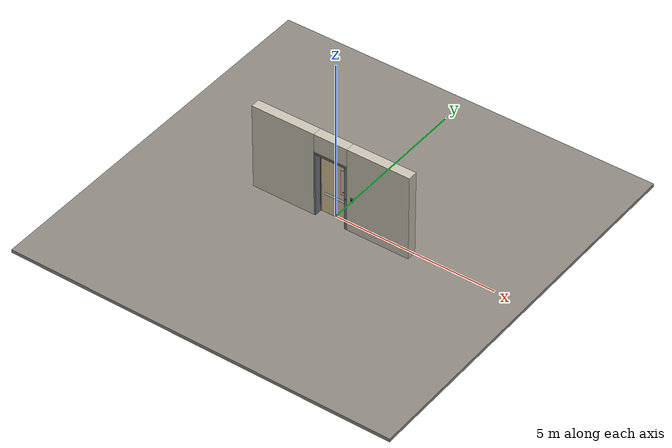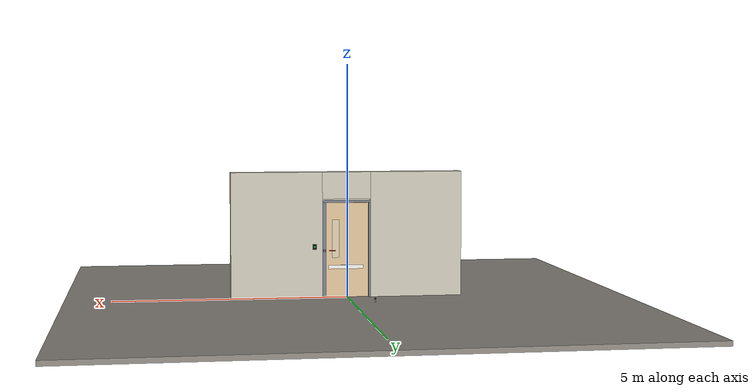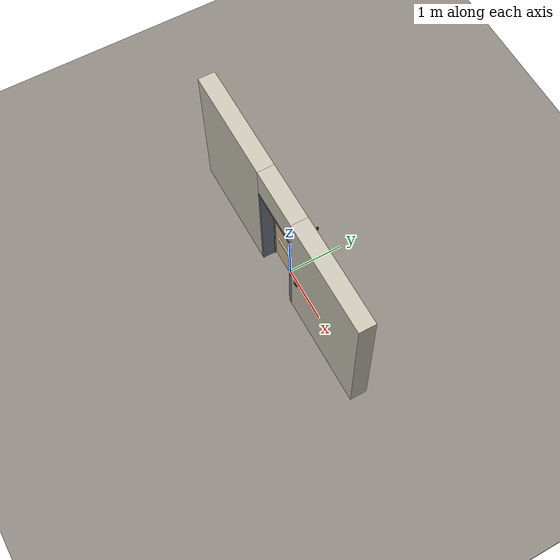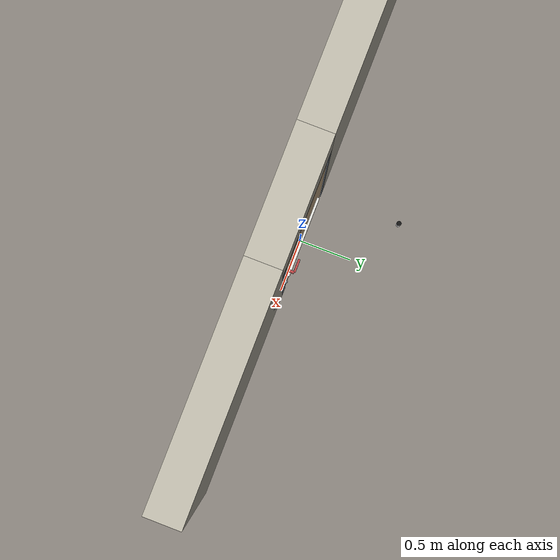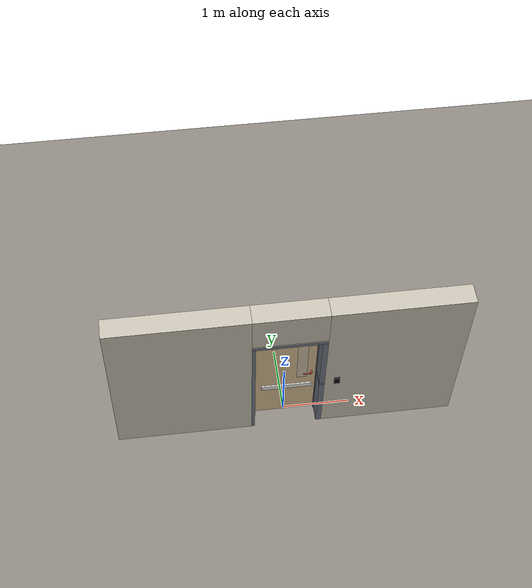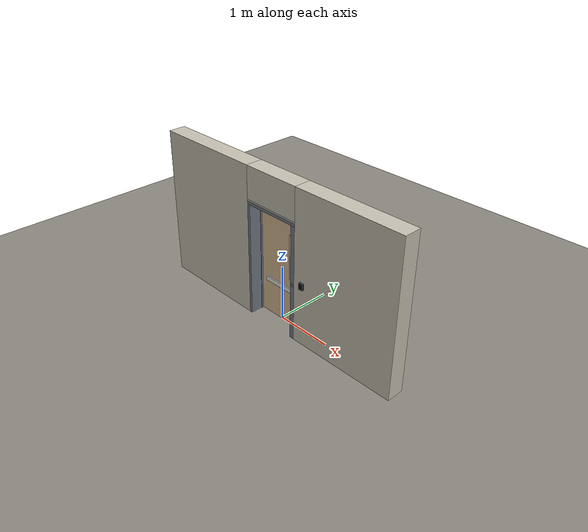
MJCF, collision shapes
<?xml version="1.0" ?>
<mujoco model="db0775_swing_single_full">
  <compiler angle="radian" meshdir="../../hardware" texturedir="../../textures" autolimits="true" inertiafromgeom="false"/>
  <option timestep="0.002" integrator="implicitfast" cone="elliptic" impratio="10" noslip_iterations="3">
    <flag multiccd="enable"/>
  </option>
  <size memory="16M"/>
  <default>
    <geom condim="4" solref="0.005 1" solimp="0.95 0.99 0.001"/>
    <joint solreflimit="0.005 1" solimplimit="0.95 0.99 0.001"/>
    <tendon solreflimit="0.005 1"/>
    <equality solref="0.002 1"/>
  </default>
  <visual>
    <headlight ambient="0.4 0.4 0.4" diffuse="0.7 0.7 0.7" specular="0.2 0.2 0.2"/>
    <quality shadowsize="4096"/>
    <map znear="0.01" zfar="60"/>
  </visual>
  <asset>
    <mesh name="hinge_e22b26c0c1" file="hinge_e22b26c0c1.obj"/>
    <mesh name="hinge_jamb_e1d088f8dc" file="hinge_jamb_e1d088f8dc.obj"/>
    <mesh name="lever_9f02b544cf" file="lever_9f02b544cf.obj"/>
    <material name="mat_floor" rgba="0.55 0.53 0.5 1" specular="0.2" shininess="0.15" reflectance="0"/>
    <material name="mat_wall" rgba="0.78 0.76 0.7 1" specular="0.2" shininess="0.1" reflectance="0"/>
    <material name="mat_leaf" rgba="0.85 0.74 0.58 1" specular="0.2" shininess="0.5" reflectance="0"/>
    <material name="mat_glass" rgba="0.85 0.92 0.95 0.25" specular="0.2" shininess="0.95" reflectance="0.1"/>
    <material name="mat_hinge" rgba="0.65 0.66 0.68 1" specular="0.74" shininess="0.5" reflectance="0.36"/>
    <material name="mat_op_nickel_satin" rgba="0.72 0.7 0.66 1" specular="0.8" shininess="0.65" reflectance="0.4"/>
    <material name="mat_trim" rgba="0.85 0.66 0.3 1" specular="0.8" shininess="0.75" reflectance="0.4"/>
    <material name="mat_bolt" rgba="0.85 0.66 0.3 1" specular="0.8" shininess="0.75" reflectance="0.4"/>
    <material name="mat_frame" rgba="0.45 0.48 0.52 1" specular="0.32" shininess="0.6" reflectance="0.08"/>
    <material name="mat_seal" rgba="0.1 0.1 0.1 1" specular="0.2" shininess="0.1" reflectance="0"/>
    <material name="mat_bumper" rgba="0.92 0.92 0.9 1" specular="0.2" shininess="0.6" reflectance="0"/>
    <material name="mat_wallreader" rgba="0.05 0.05 0.05 1" specular="0.38" shininess="0.3" reflectance="0.12"/>
    <material name="mat_rex" rgba="0.1 0.6 0.2 1" specular="0.2" shininess="0.6" reflectance="0"/>
    <material name="mat_bumper_stop" rgba="0.08 0.08 0.08 1" specular="0.2" shininess="0.1" reflectance="0"/>
    <material name="mat_stop_base" rgba="0.9 0.9 0.92 1" specular="0.8" shininess="0.9" reflectance="0.4"/>
    <texture name="skybox" type="skybox" builtin="gradient" rgb1="0.6 0.7 0.85" rgb2="0.9 0.92 0.95" width="256" height="256"/>
  </asset>
  <worldbody>
    <light name="sun" pos="1.5 -2.5 4" dir="-0.3 0.5 -0.8" directional="true" diffuse="0.8 0.8 0.8" specular="0.3 0.3 0.3" castshadow="true"/>
    <light name="fill" pos="-1.5 2.5 3" dir="0.3 -0.5 -0.7" directional="true" diffuse="0.35 0.35 0.4" castshadow="false"/>
    <camera name="robot_view" pos="0 -2.663187 1.734312" xyaxes="1 0 0 0 0.26963 0.962964" fovy="52"/>
    <camera name="far_view" pos="0 2.421187 1.734312" xyaxes="-1 0 0 0 -0.26963 0.962964" fovy="52"/>
    <camera name="iso" pos="1.932062 -2.256438 2.141063" xyaxes="0.741536 0.670913 0 -0.242917 0.268487 0.932151" fovy="46"/>
    <camera name="detail_handle" pos="0.4665 -0.877 1.296" xyaxes="0.97561 0.219512 0 -0.070934 0.315262 0.94635" fovy="38"/>
    <geom name="floor" type="box" size="6 6 0.05" pos="0 0 -0.05" material="mat_floor" group="0" contype="1" conaffinity="1" friction="0.8 0.005 0.0001" density="2400"/>
    <geom name="wall_left" type="box" size="0.99475 0.15 1.35" pos="-1.50525 -0.121 1.35" material="mat_wall" group="0" contype="1" conaffinity="1" friction="0.6 0.005 0.0001" density="800"/>
    <geom name="wall_right" type="box" size="0.97975 0.15 1.35" pos="1.52025 -0.121 1.35" material="mat_wall" group="0" contype="1" conaffinity="1" friction="0.6 0.005 0.0001" density="800"/>
    <geom name="wall_header" type="box" size="0.5255 0.15 0.2875" pos="0.015 -0.121 2.4125" material="mat_wall" group="0" contype="1" conaffinity="1" friction="0.6 0.005 0.0001" density="800"/>
    <geom name="hinge_0_jamb" type="mesh" mesh="hinge_jamb_e1d088f8dc" pos="-0.4575 0.029 0.259" quat="0 1 0 0" material="mat_hinge" group="1" contype="0" conaffinity="0" density="7850"/>
    <geom name="hinge_1_jamb" type="mesh" mesh="hinge_jamb_e1d088f8dc" pos="-0.4575 0.029 1.025" quat="0 1 0 0" material="mat_hinge" group="1" contype="0" conaffinity="0" density="7850"/>
    <geom name="hinge_2_jamb" type="mesh" mesh="hinge_jamb_e1d088f8dc" pos="-0.4575 0.029 1.861" quat="0 1 0 0" material="mat_hinge" group="1" contype="0" conaffinity="0" density="7850"/>
    <geom name="jamb_hinge" type="box" size="0.025 0.15 1.0225" pos="-0.4855 -0.121 1.0225" material="mat_frame" group="0" contype="1" conaffinity="1" friction="0.6 0.005 0.0001" density="300"/>
    <geom name="strike_1016_wall_n" type="box" size="0.04 0.13075 0.0183" pos="0.5005 -0.14025 1.016" material="mat_frame" group="0" contype="1" conaffinity="1" friction="0.6 0.005 0.0001" density="300"/>
    <geom name="strike_1016_wall_p" type="box" size="0.04 0.008 0.0183" pos="0.5005 0.0175 1.016" material="mat_frame" group="0" contype="1" conaffinity="1" friction="0.6 0.005 0.0001" density="300"/>
    <geom name="strike_1016_ramp" type="box" size="0.04 0.018028 0.0183" pos="0.503782 0.018312 1.016" quat="0.957092 0 0 -0.289784" material="mat_frame" group="0" contype="1" conaffinity="1" friction="0.12 0.005 0.0001" density="300"/>
    <geom name="strike_1016_back" type="box" size="0.0285 0.0095 0.0183" pos="0.512 0 1.016" material="mat_frame" group="0" contype="1" conaffinity="1" friction="0.6 0.005 0.0001" density="300"/>
    <geom name="jamb_strike_0" type="box" size="0.04 0.15 0.49885" pos="0.5005 -0.121 0.49885" material="mat_frame" group="0" contype="1" conaffinity="1" friction="0.6 0.005 0.0001" density="300"/>
    <geom name="jamb_strike_1" type="box" size="0.04 0.15 0.50535" pos="0.5005 -0.121 1.53965" material="mat_frame" group="0" contype="1" conaffinity="1" friction="0.6 0.005 0.0001" density="300"/>
    <geom name="jamb_head" type="box" size="0.5255 0.15 0.025" pos="0.015 -0.121 2.07" material="mat_frame" group="0" contype="1" conaffinity="1" friction="0.6 0.005 0.0001" density="300"/>
    <geom name="head_stud" type="box" size="0.5255 0.15 0.015" pos="0.015 -0.121 2.11" material="mat_wall" group="0" contype="1" conaffinity="1" friction="0.6 0.005 0.0001" density="500"/>
    <geom name="stop_hinge" type="box" size="0.0055 0.016 1.0225" pos="-0.455 -0.0385 1.0225" material="mat_frame" group="0" contype="1" conaffinity="1" friction="0.6 0.005 0.0001" density="300"/>
    <geom name="stop_strike" type="box" size="0.0055 0.016 1.0225" pos="0.455 -0.0385 1.0225" material="mat_frame" group="0" contype="1" conaffinity="1" friction="0.6 0.005 0.0001" density="300"/>
    <geom name="stop_head" type="box" size="0.4605 0.016 0.0055" pos="0 -0.0385 2.0395" material="mat_frame" group="0" contype="1" conaffinity="1" friction="0.6 0.005 0.0001" density="300"/>
    <geom name="seal_hinge" type="box" size="0.004 0.004 1.0225" pos="-0.4575 -0.026 1.0225" material="mat_seal" group="1" contype="0" conaffinity="0" density="1100"/>
    <geom name="seal_strike" type="box" size="0.004 0.004 1.0225" pos="0.4575 -0.026 1.0225" material="mat_seal" group="1" contype="0" conaffinity="0" density="1100"/>
    <geom name="seal_head" type="box" size="0.4405 0.004 0.008" pos="0 -0.026 2.033" material="mat_seal" group="1" contype="0" conaffinity="0" density="1100"/>
    <geom name="wall_reader" type="box" size="0.04 0.015 0.06" pos="0.7105 -0.286 1.1" material="mat_wallreader" group="0" contype="1" conaffinity="1" friction="0.6 0.005 0.0001" density="1000"/>
    <geom name="rex_plate" type="box" size="0.04 0.003 0.06" pos="0.7105 0.032 1.1" material="mat_wallreader" group="1" contype="0" conaffinity="0" density="1000"/>
    <geom name="door_stop_base" type="cylinder" size="0.022 0.003" pos="-0.4735 0.8059 0.003" material="mat_stop_base" group="0" contype="1" conaffinity="1" friction="0.6 0.005 0.0001" density="7850"/>
    <geom name="door_stop_post" type="cylinder" size="0.012 0.0245" pos="-0.4735 0.8059 0.0305" material="mat_stop_base" group="0" contype="1" conaffinity="1" friction="0.6 0.005 0.0001" density="7850"/>
    <geom name="door_stop_bumper" type="cylinder" size="0.022 0.02" pos="-0.4735 0.8059 0.075" material="mat_bumper_stop" group="0" contype="1" conaffinity="1" friction="0.6 0.005 0.0001" density="1100"/>
    <site name="approach_point" pos="0 -1.5 0" quat="1 0 0 0" size="0.05" rgba="0.2 0.9 0.2 0.5" group="4"/>
    <site name="goal_point" pos="0 1.5 0" quat="1 0 0 0" size="0.05" rgba="0.2 0.9 0.2 0.5" group="4"/>
    <site name="door_plane_center" pos="0 0 1.0225" quat="1 0 0 0" size="0.02" rgba="0.2 0.9 0.2 0.5" group="4"/>
    <body name="rex_button" pos="0.7105 0.035 1.1">
      <inertial pos="0 0.004 0" mass="0.010053" quat="0 0 0.707107 -0.707107" diaginertia="0.000001059 0.000001059 0.000002011"/>
      <joint name="rex_button_slide" type="slide" axis="0 -1 0" limited="true" range="0 0.004" damping="1" stiffness="1500" springref="-0.004" armature="0.1"/>
      <geom name="rex_button_geom" type="cylinder" size="0.02 0.004" pos="0 0.004 0" quat="0.707107 -0.707107 0 0" material="mat_rex" group="0" contype="1" conaffinity="1" friction="0.6 0.005 0.0001" density="1000"/>
    </body>
    <body name="leaf" pos="-0.4605 0 0">
      <inertial pos="0.456111 0.000227 1.006988" mass="60.939035" quat="-0.498828 0.499575 0.500437 0.501157" diaginertia="4.296452107 20.38051358 24.651246848"/>
      <joint name="leaf_hinge" type="hinge" axis="0 0 1" pos="0.003 0.029 0" limited="true" range="0 1.570796" solreflimit="0.02 1" damping="0.30611" frictionloss="3.032029" armature="0.02"/>
      <geom name="leaf_slab" type="box" size="0.457 0.022 1.016" pos="0.46 0 1.025" material="mat_leaf" group="0" contype="1" conaffinity="1" friction="0.4 0.005 0.0001" density="1"/>
      <geom name="leaf_glass_0" type="box" size="0.075 0.0228 0.4064" pos="0.71146 0 1.26884" material="mat_glass" group="1" contype="0" conaffinity="0" density="1"/>
      <geom name="hinge_0" type="mesh" mesh="hinge_e22b26c0c1" pos="0.003 0.029 0.259" quat="0 1 0 0" material="mat_hinge" group="1" contype="0" conaffinity="0" density="7850"/>
      <geom name="hinge_1" type="mesh" mesh="hinge_e22b26c0c1" pos="0.003 0.029 1.025" quat="0 1 0 0" material="mat_hinge" group="1" contype="0" conaffinity="0" density="7850"/>
      <geom name="hinge_2" type="mesh" mesh="hinge_e22b26c0c1" pos="0.003 0.029 1.861" quat="0 1 0 0" material="mat_hinge" group="1" contype="0" conaffinity="0" density="7850"/>
      <geom name="leaf_latch_bolt_faceplate" type="box" size="0.0006 0.014 0.0283" pos="0.9164 0 1.016" material="mat_bolt" group="1" contype="0" conaffinity="0" density="8500"/>
      <geom name="bumper_rail_n" type="box" size="0.372 0.01 0.04" pos="0.495 -0.032 0.659" material="mat_bumper" group="0" contype="1" conaffinity="1" friction="0.6 0.005 0.0001" density="1200"/>
      <geom name="bumper_rail_p" type="box" size="0.372 0.01 0.04" pos="0.495 0.032 0.659" material="mat_bumper" group="0" contype="1" conaffinity="1" friction="0.6 0.005 0.0001" density="1200"/>
      <site name="leaf_edge_mid" pos="0.917 0 1.016" quat="1 0 0 0" size="0.02" rgba="0.2 0.9 0.2 0.5" group="4"/>
      <body name="leaf_handle" pos="0.847 0 1.016">
        <inertial pos="-0.028544 0 0" mass="0.978187" quat="0 0.707107 0.707107 0" diaginertia="0.001772047 0.003604455 0.005198299"/>
        <joint name="leaf_handle_hinge" type="hinge" axis="0 -1 0" limited="true" range="0 0.96" damping="0.245624" frictionloss="0.048" stiffness="1.2" springref="-0.458333" armature="0.01"/>
        <geom name="leaf_handle_spindle" type="cylinder" size="0.006 0.03" pos="0 0 0" quat="0.707107 -0.707107 0 0" material="mat_op_nickel_satin" group="1" contype="0" conaffinity="0" density="7850"/>
        <geom name="leaf_handle_lever_n" type="mesh" mesh="lever_9f02b544cf" pos="0 -0.022 0" quat="0.707107 0.707107 0 0" material="mat_op_nickel_satin" group="1" contype="0" conaffinity="0" density="3000"/>
        <geom name="leaf_handle_lever_col_n" type="capsule" size="0.0095 0.053" pos="-0.0625 -0.077 0" quat="0.707107 0 -0.707107 0" material="mat_op_nickel_satin" group="3" contype="1" conaffinity="1" rgba="0.8 0.3 0.3 0.25" friction="0.7 0.01 0.0001" density="3000"/>
        <geom name="leaf_handle_hub_col_n" type="cylinder" size="0.012 0.022" pos="0 -0.052 0" quat="0.707107 -0.707107 0 0" material="mat_op_nickel_satin" group="3" contype="1" conaffinity="1" rgba="0.8 0.3 0.3 0.25" friction="0.6 0.005 0.0001" density="3000"/>
        <geom name="leaf_handle_lever_p" type="mesh" mesh="lever_9f02b544cf" pos="0 0.022 0" quat="-0.707107 0.707107 0 0" material="mat_op_nickel_satin" group="1" contype="0" conaffinity="0" density="3000"/>
        <geom name="leaf_handle_lever_col_p" type="capsule" size="0.0095 0.053" pos="-0.0625 0.077 0" quat="0.707107 0 -0.707107 0" material="mat_op_nickel_satin" group="3" contype="1" conaffinity="1" rgba="0.8 0.3 0.3 0.25" friction="0.7 0.01 0.0001" density="3000"/>
        <geom name="leaf_handle_hub_col_p" type="cylinder" size="0.012 0.022" pos="0 0.052 0" quat="0.707107 -0.707107 0 0" material="mat_op_nickel_satin" group="3" contype="1" conaffinity="1" rgba="0.8 0.3 0.3 0.25" friction="0.6 0.005 0.0001" density="3000"/>
        <site name="leaf_handle_grip_n" pos="-0.1 -0.077 0" quat="1 0 0 0" size="0.012" rgba="0.2 0.9 0.2 0.5" group="4"/>
        <site name="leaf_handle_grip_p" pos="-0.1 0.077 0" quat="1 0 0 0" size="0.012" rgba="0.2 0.9 0.2 0.5" group="4"/>
      </body>
      <body name="leaf_latch_bolt" pos="0.917 0 1.016">
        <inertial pos="-0.0055 0 0" mass="0.074627" quat="0.92388 -0.382683 0 0" diaginertia="0.000002271 0.000013255 0.000013255"/>
        <joint name="leaf_latch_bolt_slide" type="slide" axis="-1 0 0" limited="true" range="0 0.019" damping="2" frictionloss="0.3" stiffness="600" springref="-0.01" armature="0.1"/>
        <geom name="leaf_latch_bolt_capsule" type="capsule" size="0.008 0.0165" pos="-0.0055 0 0" quat="0.707107 0 0.707107 0" material="mat_bolt" group="0" contype="1" conaffinity="1" friction="0.2 0.005 0.0001" density="8500"/>
      </body>
    </body>
  </worldbody>
  <tendon>
    <fixed name="leaf_latch_bolt_coupling" limited="true" range="0 10">
      <joint joint="leaf_latch_bolt_slide" coef="1"/>
      <joint joint="leaf_handle_hinge" coef="-0.020879"/>
    </fixed>
  </tendon>
  <sensor>
    <jointpos name="leaf_hinge_pos" joint="leaf_hinge"/>
    <jointvel name="leaf_hinge_vel" joint="leaf_hinge"/>
    <jointpos name="leaf_handle_hinge_pos" joint="leaf_handle_hinge"/>
    <jointvel name="leaf_handle_hinge_vel" joint="leaf_handle_hinge"/>
    <jointpos name="leaf_latch_bolt_slide_pos" joint="leaf_latch_bolt_slide"/>
    <jointvel name="leaf_latch_bolt_slide_vel" joint="leaf_latch_bolt_slide"/>
    <jointpos name="rex_button_slide_pos" joint="rex_button_slide"/>
    <jointvel name="rex_button_slide_vel" joint="rex_button_slide"/>
  </sensor>
</mujoco>
